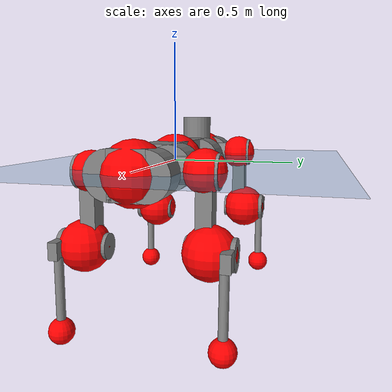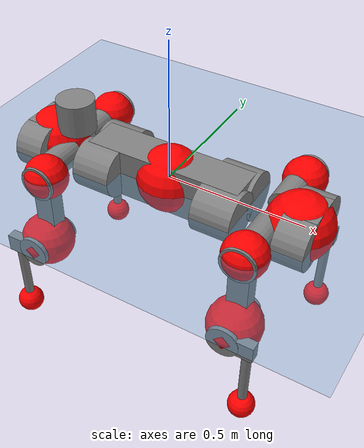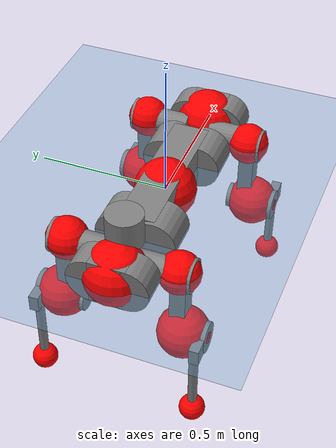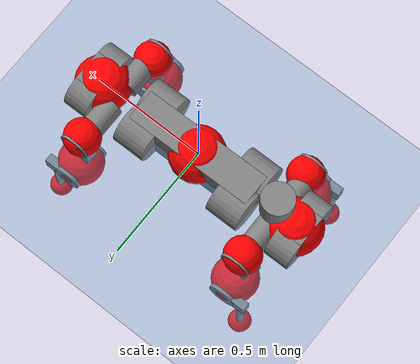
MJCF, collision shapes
<mujoco model="anymal_c">
  <compiler angle="radian" assetdir="assets" balanceinertia="true" inertiafromgeom="false"/>

  <option timestep="0.005" density="1.2" viscosity="2e-05"/>

  <size nkey="1"/>

  <visual>
    <quality shadowsize="8192"/>
    <map shadowclip="0.5"/>
  </visual>

  <default>
    <default class="/">
      <material specular="0" shininess="0.25"/>
      <geom contype="0" conaffinity="0" group="1" solref="-1000 -80"/>
      <site size="0.01 0.005 0.005" group="5"/>
      <general forcelimited="true" forcerange="-80 80" biastype="affine" gainprm="80" biasprm="0 -80 -2"/>
      <default class="anymal_c">
        <joint armature="0.01" damping="0.01" frictionloss="0.1"/>
        <default class="visual">
          <geom type="mesh" group="2"/>
          <default class="visual_zflip"/>
        </default>
        <default class="collision">
          <geom type="cylinder" group="3"/>
          <default class="foot">
            <geom size="0.03 0 0" type="sphere" condim="6" priority="1" friction="0.8 0.02 0.01" solimp="0.015 1 0.03"/>
          </default>
        </default>
      </default>
      <default class="reward_collision_sphere">
        <geom group="5" rgba="1 0 0 1"/>
      </default>
    </default>
  </default>

  <asset>
    <texture type="skybox" colorspace="auto" name="//unnamed_texture_0" builtin="gradient" rgb1="0.95 0.95 0.95" rgb2="0.95 0.95 0.95" width="100" height="600"/>
    <texture type="2d" colorspace="auto" name="texplane" builtin="checker" rgb1="0.345 0.575 0.748" rgb2="0.345 0.575 0.748" markrgb="1 1 1" width="512" height="512"/>
    <texture type="2d" colorspace="linear" name="base" file="base.png"/>
    <texture type="2d" colorspace="linear" name="top_shell" file="top_shell.png"/>
    <texture type="2d" colorspace="linear" name="bottom_shell" file="bottom_shell.png"/>
    <texture type="2d" colorspace="linear" name="remote" file="remote.png"/>
    <texture type="2d" colorspace="linear" name="hatch" file="hatch.png"/>
    <texture type="2d" colorspace="linear" name="handle" file="handle.png"/>
    <texture type="2d" colorspace="linear" name="face" file="face.png"/>
    <texture type="2d" colorspace="linear" name="battery" file="battery.png"/>
    <texture type="2d" colorspace="linear" name="lidar_cage" file="lidar_cage.png"/>
    <texture type="2d" colorspace="linear" name="depth_camera" file="depth_camera.png"/>
    <texture type="2d" colorspace="linear" name="wide_angle_camera" file="wide_angle_camera.png"/>
    <texture type="2d" colorspace="linear" name="lidar" file="lidar.png"/>
    <texture type="2d" colorspace="linear" name="drive" file="drive.png"/>
    <texture type="2d" colorspace="linear" name="hip_l" file="hip_l.png"/>
    <texture type="2d" colorspace="linear" name="shank_l" file="shank_l.png"/>
    <texture type="2d" colorspace="linear" name="foot" file="foot.png"/>
    <texture type="2d" colorspace="linear" name="thigh" file="thigh.png"/>
    <texture type="2d" colorspace="linear" name="shank_r" file="shank_r.png"/>
    <texture type="2d" colorspace="linear" name="hip_r" file="hip_r.png"/>
    <material name="MatPlane" class="/" texture="texplane" texuniform="true" texrepeat="2 2" specular="0.9" shininess="0.5"/>
    <material name="black_plastic" class="/" rgba="0.007 0.007 0.007 1"/>
    <material name="green" class="/" rgba="0.052 0.178 0.033 1"/>
    <material name="red" class="/" rgba="0.178 0.006 0.005 1"/>
    <material name="yellow" class="/" rgba="0.178 0.119 0.006 1"/>
    <material name="lwl" class="/" rgba="0.8 0.8 0.8 1"/>
    <material name="base" class="/" texture="base"/>
    <material name="top_shell" class="/" texture="top_shell"/>
    <material name="bottom_shell" class="/" texture="bottom_shell"/>
    <material name="hip_l" class="/" texture="hip_l"/>
    <material name="thigh" class="/" texture="thigh"/>
    <material name="shank_l" class="/" texture="shank_l"/>
    <material name="foot" class="/" texture="foot"/>
    <material name="hip_r" class="/" texture="hip_r"/>
    <material name="shank" class="/" texture="shank_r"/>
    <material name="hatch" class="/" texture="hatch"/>
    <material name="remote" class="/" texture="remote"/>
    <material name="handle" class="/" texture="handle"/>
    <material name="face" class="/" texture="face"/>
    <material name="depth_camera" class="/" texture="depth_camera"/>
    <material name="wide_angle_camera" class="/" texture="wide_angle_camera"/>
    <material name="battery" class="/" texture="battery"/>
    <material name="lidar_cage" class="/" texture="lidar_cage"/>
    <material name="lidar" class="/" texture="lidar"/>
    <material name="drive" class="/" texture="drive"/>
    <mesh name="base_0" class="/" file="base_0.obj"/>
    <mesh name="base_1" class="/" file="base_1.obj"/>
    <mesh name="base_2" class="/" file="base_2.obj"/>
    <mesh name="base_3" class="/" file="base_3.obj"/>
    <mesh name="base_4" class="/" file="base_4.obj"/>
    <mesh name="base_5" class="/" file="base_5.obj"/>
    <mesh name="top_shell" class="/" file="top_shell.obj"/>
    <mesh name="bottom_shell" class="/" file="bottom_shell.obj"/>
    <mesh name="remote" class="/" file="remote.obj"/>
    <mesh name="handle" class="/" file="handle.obj"/>
    <mesh name="face" class="/" file="face.obj"/>
    <mesh name="wide_angle_camera" class="/" file="wide_angle_camera.obj"/>
    <mesh name="depth_camera" class="/" file="depth_camera.obj"/>
    <mesh name="battery" class="/" file="battery.obj"/>
    <mesh name="lidar_cage" class="/" file="lidar_cage.obj"/>
    <mesh name="lidar" class="/" file="lidar.obj"/>
    <mesh name="drive" class="/" file="drive.obj"/>
    <mesh name="hip_l" class="/" file="hip_l.obj"/>
    <mesh name="thigh" class="/" file="thigh.obj"/>
    <mesh name="shank_l" class="/" file="shank_l.obj"/>
    <mesh name="foot" class="/" file="foot.obj"/>
    <mesh name="hip_r" class="/" file="hip_r.obj"/>
    <mesh name="hatch" class="/" file="hatch.obj"/>
    <mesh name="shank_r" class="/" file="shank_r.obj"/>
  </asset>

  <worldbody>
    <geom name="floor" class="/" size="100 100 0.125" type="plane" group="0" material="MatPlane"/>
    <light name="toplight_shadow" class="/" pos="0 0 5" dir="0.0990148 0.0990148 -0.990148" type="directional" ambient="0.04 0.04 0.04" diffuse="0.55 0.55 0.55" specular="0.12 0.12 0.12"/>
    <light name="toplight_fill" class="/" pos="0 0 5" dir="0.0990148 0.0990148 -0.990148" type="directional" castshadow="false" ambient="0.04 0.04 0.04" diffuse="0.3 0.3 0.3" specular="0.08 0.08 0.08"/>
    <body name="trunk" childclass="anymal_c" pos="0.00340822 0.00119652 -0.00470032" quat="0.999996 -0.0011391 0.00123647 0.00246093">
      <inertial pos="0.0171751 0.0114093 0.0548292" quat="0.499562 0.490713 0.498754 0.510768" mass="15.2328" diaginertia="0.852981 0.401164 0.186921"/>
      <joint name="//unnamed_joint_0" type="free" armature="0" damping="0" frictionloss="0"/>
      <geom name="//unnamed_geom_1" class="visual" material="green" mesh="base_0"/>
      <geom name="//unnamed_geom_2" class="visual" material="yellow" mesh="base_1"/>
      <geom name="//unnamed_geom_3" class="visual" material="red" mesh="base_2"/>
      <geom name="//unnamed_geom_4" class="visual" material="black_plastic" mesh="base_3"/>
      <geom name="//unnamed_geom_5" class="visual" material="lwl" mesh="base_4"/>
      <geom name="//unnamed_geom_6" class="visual" material="base" mesh="base_5"/>
      <geom name="trunk_1" class="collision" size="0.285464 0.0689051 0.0885922" type="box"/>
      <geom name="trunk_2" class="collision" size="0.0885922 0.0713659" pos="0.229966 0.0643017 0" quat="0.707107 0 0.707107 0"/>
      <geom name="trunk_3" class="collision" size="0.0885922 0.0713659" pos="-0.229966 0.0643017 0" quat="0.707107 0 0.707107 0"/>
      <geom name="trunk_4" class="collision" size="0.0885922 0.0713659" pos="0.229966 -0.0643017 0" quat="0.707107 0 0.707107 0"/>
      <geom name="trunk_5" class="collision" size="0.0885922 0.0713659" pos="-0.229966 -0.0643017 0" quat="0.707107 0 0.707107 0"/>
      <geom name="//unnamed_geom_12" class="visual" material="top_shell" mesh="top_shell"/>
      <geom name="//unnamed_geom_13" class="visual" material="bottom_shell" mesh="bottom_shell"/>
      <geom name="//unnamed_geom_14" class="visual" material="remote" mesh="remote"/>
      <geom name="//unnamed_geom_15" class="visual" material="handle" mesh="handle"/>
      <geom name="//unnamed_geom_16" class="visual" pos="0.438257 0 0" quat="1 0 0 0" material="face" mesh="face"/>
      <geom name="trunk_6" class="collision" size="0.0541397 0.0689051 0.0885922" pos="0.49641 0 0" type="box"/>
      <geom name="//unnamed_geom_18" class="collision" size="0.0885922 0.0541397" pos="0.49641 0.0643017 0" quat="0.707107 0 0.707107 0"/>
      <geom name="//unnamed_geom_19" class="collision" size="0.0885922 0.0541397" pos="0.49641 -0.0643017 0" quat="0.707107 0 0.707107 0"/>
      <geom name="//unnamed_geom_20" class="visual" pos="0.488106 0 -0.027924" quat="0.965926 0 0.258819 0" material="depth_camera" mesh="depth_camera"/>
      <geom name="//unnamed_geom_21" class="visual" pos="0.542403 0 0.0146281" material="wide_angle_camera" mesh="wide_angle_camera"/>
      <geom name="//unnamed_geom_22" class="visual_zflip" pos="-0.438257 0 0" quat="0 0 0 1" material="face" mesh="face"/>
      <geom name="trunk_7" class="collision" size="0.0541397 0.0689051 0.0885922" pos="-0.49641 0 0" quat="0 0 0 1" type="box"/>
      <geom name="//unnamed_geom_24" class="collision" size="0.0885922 0.0541397" pos="-0.49641 -0.0643017 0" quat="0 -0.707107 0 0.707107"/>
      <geom name="//unnamed_geom_25" class="collision" size="0.0885922 0.0541397" pos="-0.49641 0.0643017 0" quat="0 -0.707107 0 0.707107"/>
      <geom name="//unnamed_geom_26" class="visual" pos="-0.488106 0 -0.027924" quat="0 -0.258819 0 0.965926" material="depth_camera" mesh="depth_camera"/>
      <geom name="//unnamed_geom_27" class="visual_zflip" pos="-0.542403 0 0.0146281" quat="0 0 0 1" material="wide_angle_camera" mesh="wide_angle_camera"/>
      <geom name="//unnamed_geom_28" class="visual" material="battery" mesh="battery"/>
      <geom name="//unnamed_geom_29" class="visual" pos="0 0.0684122 0.0289957" quat="0.683013 -0.183013 0.183013 0.683013" material="depth_camera" mesh="depth_camera"/>
      <geom name="//unnamed_geom_30" class="visual" pos="0 -0.0684122 0.0289957" quat="0.683013 0.183013 0.183013 -0.683013" material="depth_camera" mesh="depth_camera"/>
      <geom name="//unnamed_geom_31" class="visual" pos="-0.384863 0 0.0718214" quat="1 0 0 0" material="lidar_cage" mesh="lidar_cage"/>
      <geom name="trunk_8" class="collision" size="0.0689051 0.0590615" pos="-0.384863 0 0.130451"/>
      <geom name="//unnamed_geom_33" class="visual" pos="-0.384863 -5.44991e-05 0.138953" quat="0.707107 0 0 -0.707107" material="lidar" mesh="lidar"/>
      <geom name="//unnamed_geom_34" class="visual" pos="0.317089 0.0955548 -1.01028e-09" quat="0.258819 0.965926 0 0" material="drive" mesh="drive"/>
      <geom name="//unnamed_geom_35" class="visual" pos="0.317089 -0.0955548 1.01028e-09" quat="0.258819 -0.965926 0 0" material="drive" mesh="drive"/>
      <geom name="//unnamed_geom_36" class="visual" pos="-0.317089 0.0955548 1.01028e-09" quat="0 0 0.965926 -0.258819" material="drive" mesh="drive"/>
      <geom name="//unnamed_geom_37" class="visual" pos="-0.317089 -0.0955548 -1.01028e-09" quat="0 0 -0.965926 -0.258819" material="drive" mesh="drive"/>
      <geom name="//unnamed_geom_38" class="visual" pos="0.122649 0 0.0713329" quat="1 0 0 0" material="hatch" mesh="hatch"/>
      <geom name="//unnamed_geom_39" class="reward_collision_sphere" size="0.118123"/>
      <geom name="//unnamed_geom_40" class="reward_collision_sphere" size="0.118123" pos="0.475792 0 0"/>
      <geom name="//unnamed_geom_41" class="reward_collision_sphere" size="0.118123" pos="-0.475792 0 0"/>
      <site name="imu" pos="0.200164 0.00659736 0.107839" size="0.00984358"/>
      <camera name="track" pos="0 -1.83719 0" quat="0.707107 0.707107 0 0" mode="trackcom"/>
      <camera name="ego_camera" pos="0.475792 0 -0.0390865" quat="-0.5 -0.5 0.5 0.5"/>
      <body name="LF_HIP" pos="0.327016 0.105961 0.00641947" quat="0.258919 0.965899 4.30919e-05 0.000659586">
        <inertial pos="0.0595592 -0.00424951 -0.00760603" quat="-0.131328 0.71125 -0.135145 0.677209" mass="2.86919" diaginertia="0.00926303 0.00430129 0.00351086"/>
        <joint name="LF_HAA" pos="0 0 0" axis="0.999995 -0.00135587 -0.00270951" stiffness="0.0426768" range="-0.726288 0.377429" armature="0.0100881" damping="0" frictionloss="0.14082"/>
        <geom name="//unnamed_geom_42" class="visual" pos="0 -5.94303e-05 9.76138e-06" quat="0.258819 -0.965926 0 0" material="hip_l" mesh="hip_l"/>
        <geom name="//unnamed_geom_43" class="visual" pos="0.0633332 -0.074936 -0.0436975" quat="0.183013 -0.683013 0.683013 0.183013" material="drive" mesh="drive"/>
        <geom name="//unnamed_geom_44" class="collision" size="0.0492179 0.0689051" pos="0.0633332 -0.0109862 -0.00674731" quat="-0.353553 -0.612372 0.612372 -0.353553"/>
        <body name="LF_THIGH" pos="0.0706656 -0.0800181 -0.0472331" quat="0.180228 -0.685332 0.682684 0.178271">
          <inertial pos="0.0331285 0.000221246 -0.247201" quat="0.989732 0.0101696 -0.0623209 0.128231" mass="3.28279" diaginertia="0.0398144 0.0230972 0.00356365"/>
          <joint name="LF_HFE" pos="0 0 0" axis="0.999872 0.00860742 -0.0135066" stiffness="0.0119919" range="-3.37072 2.96999" armature="0.011493" damping="0" frictionloss="0.134795"/>
          <geom name="//unnamed_geom_45" class="visual" pos="0.00275997 4.34907e-06 0" quat="0.707107 0 0 -0.707107" material="thigh" mesh="thigh"/>
          <geom name="//unnamed_geom_46" class="collision" size="0.0639833 0.0393743" pos="0.0422926 0 0" quat="0.5 0.5 -0.5 -0.5"/>
          <geom name="//unnamed_geom_47" class="collision" size="0.0369134 0.0295307 0.139104" pos="0.0317195 0 -0.138087" quat="0.707107 0 0 -0.707107" type="box"/>
          <geom name="//unnamed_geom_48" class="visual" pos="0.106049 0 -0.278491" quat="1 0 0 0" material="drive" mesh="drive"/>
          <geom name="//unnamed_geom_49" class="collision" size="0.0492179 0.0689051" pos="0.0320367 0 -0.278491" quat="0.707107 0 0.707107 0"/>
          <geom name="//unnamed_geom_50" class="reward_collision_sphere" size="0.0787486" pos="0.0264329 0 0"/>
          <body name="LF_SHANK" pos="0.105024 -0.0118934 -0.279641" quat="0.999999 -0.00146981 -0.000262247 -0.000124704">
            <inertial pos="0.0046833 -0.0588495 -0.0724951" quat="0.99294 -0.11669 -0.00231861 -0.0211492" mass="0.585099" diaginertia="0.0156523 0.00614418 0.000989723"/>
            <joint name="LF_KFE" pos="0 0 0" axis="0.999995 -0.00289962 -0.000963467" stiffness="0.0558828" range="-3.3087 3.15977" armature="0.00782986" damping="0.00752252" frictionloss="0.103492"/>
            <geom name="//unnamed_geom_51" class="visual" pos="0.000899966 0.00479867 0" quat="0.707107 0 0 -0.707107" material="shank_l" mesh="shank_l"/>
            <geom name="LF_kfe_act" class="collision" size="0.0590615 0.0196872" pos="0.0211463 0 0" quat="0.5 0.5 -0.5 -0.5"/>
            <geom name="//unnamed_geom_53" class="collision" size="0.0565996 0.0332221 0.0187028" pos="0.0211463 -0.0528183 0" quat="0.5 0.5 -0.5 -0.5" type="box"/>
            <geom name="//unnamed_geom_54" class="visual" pos="0.0137977 -0.0792441 -0.330252" quat="0.382683 0 0 -0.92388" material="foot" mesh="foot"/>
            <geom name="LF_calf" class="collision" size="0.0172263 0.139043" pos="0.013798 -0.0807905 -0.165126" quat="0.707107 0 0 -0.707107"/>
            <geom name="LF_foot" class="foot" size="0.0314095" pos="0.013798 -0.0807905 -0.308265" quat="0.707107 0 0 -0.707107"/>
            <geom name="//unnamed_geom_57" class="reward_collision_sphere" size="0.0984358" pos="-0.0528658 0 0"/>
            <geom name="//unnamed_geom_58" class="reward_collision_sphere" size="0.0492179" pos="0.013798 -0.0807905 -0.308265"/>
            <site name="LF_foot" class="foot" pos="0.013798 -0.0807905 -0.308265" quat="0.707107 0 0 -0.707107" size="0.00984358"/>
          </body>
        </body>
      </body>
      <body name="RF_HIP" pos="0.330013 -0.097205 0.00272693" quat="0.259049 -0.965864 -0.000722847 -6.99223e-05">
        <inertial pos="0.0681697 0.0288317 0.000344579" quat="0.195203 0.659204 0.102772 0.718876" mass="2.59946" diaginertia="0.00852487 0.00265239 0.00320717"/>
        <joint name="RF_HAA" pos="0 0 0" axis="0.998658 0.0495343 -0.0151323" range="-0.528801 0.695964" armature="0.00972967" damping="0.0516559" frictionloss="0.0739061"/>
        <geom name="//unnamed_geom_59" class="visual" pos="0 5.94298e-05 9.76135e-06" quat="0.258819 0.965926 0 0" material="hip_r" mesh="hip_r"/>
        <geom name="//unnamed_geom_60" class="visual" pos="0.0633332 0.074936 -0.0436975" quat="0.183013 0.683013 0.683013 -0.183013" material="drive" mesh="drive"/>
        <geom name="//unnamed_geom_61" class="collision" size="0.0492179 0.0689051" pos="0.0633332 0.0109862 -0.00674731" quat="-0.353553 0.612372 0.612372 0.353553"/>
        <body name="RF_THIGH" pos="0.0563488 0.0735749 -0.0300354" quat="0.182588 0.686436 0.680615 -0.179528">
          <inertial pos="0.0199162 0.00410529 -0.232698" quat="0.995184 0.0238959 -0.0651092 0.0692668" mass="2.63207" diaginertia="0.0453375 0.0228468 0.00323038"/>
          <joint name="RF_HFE" pos="0 0 0" axis="0.999997 -0.00119668 0.00228279" stiffness="0.016877" range="-3.23391 3.18899" armature="0.0135517" damping="0.00648947" frictionloss="0.0708194"/>
          <geom name="//unnamed_geom_62" class="visual" pos="0.00275997 4.34907e-06 0" quat="0.707107 0 0 -0.707107" material="thigh" mesh="thigh"/>
          <geom name="//unnamed_geom_63" class="collision" size="0.0639833 0.0393743" pos="0.0422926 0 0" quat="0.5 0.5 0.5 0.5"/>
          <geom name="//unnamed_geom_64" class="collision" size="0.0369134 0.0295307 0.139104" pos="0.0317195 0 -0.138087" quat="0.707107 0 0 0.707107" type="box"/>
          <geom name="//unnamed_geom_65" class="visual" pos="0.106049 0 -0.278491" quat="1 0 0 0" material="drive" mesh="drive"/>
          <geom name="//unnamed_geom_66" class="collision" size="0.0492179 0.0689051" pos="0.0320367 0 -0.278491" quat="0.707107 0 0.707107 0"/>
          <geom name="//unnamed_geom_67" class="reward_collision_sphere" size="0.0787486" pos="0.0264329 0 0"/>
          <body name="RF_SHANK" pos="0.11369 0.00148824 -0.279822" quat="0.999993 -0.00265718 0.00104617 -0.00236639">
            <inertial pos="0.0157081 0.0559696 -0.0783956" quat="0.989721 0.135719 0.035424 -0.0278963" mass="0.443622" diaginertia="0.0109206 0.00567858 0.000884853"/>
            <joint name="RF_KFE" pos="0 0 0" axis="0.999898 0.0124329 -0.00699573" stiffness="0.062188" range="-2.88242 3.29534" armature="0.0042492" damping="0" frictionloss="0.0688544"/>
            <geom name="//unnamed_geom_68" class="visual" pos="0.000899961 -0.00479866 0" quat="0.707107 0 0 0.707107" material="shank" mesh="shank_r"/>
            <geom name="RF_kfe_act" class="collision" size="0.0590615 0.0196872" pos="0.0211463 0 0" quat="0.5 0.5 0.5 0.5"/>
            <geom name="//unnamed_geom_70" class="collision" size="0.0565996 0.0332221 0.0187028" pos="0.0211463 0.0528183 0" quat="0.5 0.5 0.5 0.5" type="box"/>
            <geom name="//unnamed_geom_71" class="visual" pos="0.0137982 0.0792441 -0.330252" quat="0.382683 0 0 0.92388" material="foot" mesh="foot"/>
            <geom name="RF_calf" class="collision" size="0.0172263 0.139043" pos="0.013798 0.0807905 -0.165126" quat="0.707107 0 0 0.707107"/>
            <geom name="RF_foot" class="foot" size="0.0404328" pos="0.013798 0.0807905 -0.308265" quat="0.707107 0 0 0.707107"/>
            <geom name="//unnamed_geom_74" class="reward_collision_sphere" size="0.0984358" pos="-0.0528658 0 0"/>
            <geom name="//unnamed_geom_75" class="reward_collision_sphere" size="0.0492179" pos="0.013798 0.0807905 -0.308265"/>
            <site name="RF_foot" class="foot" pos="0.013798 0.0807905 -0.308265" quat="0.707107 0 0 0.707107" size="0.00984358"/>
          </body>
        </body>
      </body>
      <body name="LH_HIP" pos="-0.328775 0.104544 0.0111978" quat="8.94208e-05 7.91831e-05 0.965946 -0.258745">
        <inertial pos="0.0595095 0.0051949 0.0052018" quat="0.11628 0.674817 0.175697 0.707271" mass="2.20652" diaginertia="0.0052859 0.00279208 0.00267307"/>
        <joint name="LH_HAA" pos="0 0 0" axis="0.998663 0.00455958 0.0514997" stiffness="0.0281492" range="-0.515647 0.625292" armature="0.00971886" damping="0.0672651" frictionloss="0.0957532"/>
        <geom name="//unnamed_geom_76" class="visual" pos="0 5.94298e-05 9.76135e-06" quat="-0.258819 -0.965926 0 0" material="hip_r" mesh="hip_r"/>
        <geom name="//unnamed_geom_77" class="visual" pos="0.0633332 0.074936 -0.0436975" quat="0.183013 0.683013 0.683013 -0.183013" material="drive" mesh="drive"/>
        <geom name="//unnamed_geom_78" class="collision" size="0.0492179 0.0689051" pos="0.0633332 0.0109862 -0.00674731" quat="-0.353553 0.612372 0.612372 0.353553"/>
        <body name="LH_THIGH" pos="0.0614392 0.0723828 -0.0469295" quat="0.182122 0.684738 0.68144 -0.183317">
          <inertial pos="0.047092 -0.0045293 -0.226757" quat="0.993268 -0.00489968 -0.0750261 0.0881212" mass="3.48297" diaginertia="0.0522715 0.0193109 0.0038905"/>
          <joint name="LH_HFE" pos="0 0 0" axis="0.999998 -0.00116477 -0.00134848" range="-3.00593 3.30997" armature="0.00853529" damping="0.0557565" frictionloss="0.0934226"/>
          <geom name="//unnamed_geom_79" class="visual" pos="0.00275997 4.34907e-06 0" quat="0.707107 0 0 -0.707107" material="thigh" mesh="thigh"/>
          <geom name="//unnamed_geom_80" class="collision" size="0.0639833 0.0393743" pos="0.0422926 0 0" quat="0.5 0.5 -0.5 -0.5"/>
          <geom name="//unnamed_geom_81" class="collision" size="0.0369134 0.0295307 0.139104" pos="0.0317195 0 -0.138087" quat="0.707107 0 0 -0.707107" type="box"/>
          <geom name="//unnamed_geom_82" class="visual" pos="0.106049 0 -0.278491" quat="1 0 0 0" material="drive" mesh="drive"/>
          <geom name="//unnamed_geom_83" class="collision" size="0.0492179 0.0689051" pos="0.0320367 0 -0.278491" quat="0.707107 0 0.707107 0"/>
          <geom name="//unnamed_geom_84" class="reward_collision_sphere" size="0.0787486" pos="0.0264329 0 0"/>
          <body name="LH_SHANK" pos="0.11144 -0.00509497 -0.274249" quat="1 -0.000570715 -0.000310384 -0.000141825">
            <inertial pos="-0.000957491 0.0446185 -0.0744319" quat="0.9918 0.124231 0.0299733 0.000728931" mass="0.453222" diaginertia="0.0121597 0.00423309 0.000772292"/>
            <joint name="LH_KFE" pos="0 0 0" axis="0.999998 -0.00128467 -0.00122277" range="-3.3655 3.3181" armature="0.00370487" damping="0" frictionloss="0.151355"/>
            <geom name="//unnamed_geom_85" class="visual" pos="0.000899961 -0.00479866 0" quat="-0.707107 0 0 -0.707107" material="shank" mesh="shank_r"/>
            <geom name="LH_kfe_act" class="collision" size="0.0590615 0.0196872" pos="0.0211463 0 0" quat="0.5 0.5 -0.5 -0.5"/>
            <geom name="//unnamed_geom_87" class="collision" size="0.0565996 0.0332221 0.0187028" pos="0.0211463 0.0528183 0" quat="0.5 0.5 -0.5 -0.5" type="box"/>
            <geom name="//unnamed_geom_88" class="visual" pos="0.0137982 0.0792441 -0.330252" quat="-0.382683 0 0 -0.92388" material="foot" mesh="foot"/>
            <geom name="LH_calf" class="collision" size="0.0172263 0.139043" pos="0.013798 0.0807905 -0.165126" quat="0.707107 0 0 -0.707107"/>
            <geom name="LH_foot" class="foot" size="0.0237713" pos="0.013798 0.0807905 -0.308265" quat="0.707107 0 0 -0.707107"/>
            <geom name="//unnamed_geom_91" class="reward_collision_sphere" size="0.0984358" pos="-0.0528658 0 0"/>
            <geom name="//unnamed_geom_92" class="reward_collision_sphere" size="0.0492179" pos="0.013798 0.0807905 -0.308265"/>
            <site name="LH_foot" class="foot" pos="0.013798 0.0807905 -0.308265" quat="0.707107 0 0 -0.707107" size="0.00984358"/>
          </body>
        </body>
      </body>
      <body name="RH_HIP" pos="-0.331641 -0.0955065 -0.00553654" quat="5.66116e-05 8.02877e-05 -0.96593 -0.258804">
        <inertial pos="0.0676201 -0.0211209 0.00507483" quat="-0.173399 0.668691 -0.170328 0.702691" mass="2.70252" diaginertia="0.00924083 0.00383658 0.00340916"/>
        <joint name="RH_HAA" pos="0 0 0" axis="0.998098 0.0458008 0.0412578" range="-0.48309 0.350766" armature="0.0126798" damping="0.0437707" frictionloss="0.0955131"/>
        <geom name="//unnamed_geom_93" class="visual" pos="0 -5.94303e-05 9.76138e-06" quat="-0.258819 0.965926 0 0" material="hip_l" mesh="hip_l"/>
        <geom name="//unnamed_geom_94" class="visual" pos="0.0633332 -0.074936 -0.0436975" quat="-0.183013 0.683013 -0.683013 -0.183013" material="drive" mesh="drive"/>
        <geom name="//unnamed_geom_95" class="collision" size="0.0492179 0.0689051" pos="0.0633332 -0.0109862 -0.00674731" quat="0.353553 0.612372 -0.612372 0.353553"/>
        <body name="RH_THIGH" pos="0.0499164 -0.0713995 -0.0291721" quat="-0.178382 0.681916 -0.684798 -0.184993">
          <inertial pos="0.0331954 -0.00757985 -0.243177" quat="0.993426 -0.00885215 -0.0762302 0.0849401" mass="3.61788" diaginertia="0.0494248 0.021676 0.00417619"/>
          <joint name="RH_HFE" pos="0 0 0" axis="0.999946 0.00474419 -0.00923063" stiffness="0.00371573" range="-3.29439 3.22314" armature="0.0108894" damping="0" frictionloss="0.0921532"/>
          <geom name="//unnamed_geom_96" class="visual" pos="0.00275997 4.34907e-06 0" quat="0.707107 0 0 -0.707107" material="thigh" mesh="thigh"/>
          <geom name="//unnamed_geom_97" class="collision" size="0.0639833 0.0393743" pos="0.0422926 0 0" quat="0.5 0.5 0.5 0.5"/>
          <geom name="//unnamed_geom_98" class="collision" size="0.0369134 0.0295307 0.139104" pos="0.0317195 0 -0.138087" quat="0.707107 0 0 0.707107" type="box"/>
          <geom name="//unnamed_geom_99" class="visual" pos="0.106049 0 -0.278491" quat="1 0 0 0" material="drive" mesh="drive"/>
          <geom name="//unnamed_geom_100" class="collision" size="0.0492179 0.0689051" pos="0.0320367 0 -0.278491" quat="0.707107 0 0.707107 0"/>
          <geom name="//unnamed_geom_101" class="reward_collision_sphere" size="0.0787486" pos="0.0264329 0 0"/>
          <body name="RH_SHANK" pos="0.102984 -0.010387 -0.273862" quat="0.99998 0.00402465 -0.00134393 0.00464802">
            <inertial pos="-0.00475407 -0.0503233 -0.0825079" quat="0.991855 -0.105122 0.0194079 -0.0692605" mass="0.534916" diaginertia="0.0143755 0.00599013 0.00109372"/>
            <joint name="RH_KFE" pos="0 0 0" axis="0.99999 0.00173706 -0.00413868" range="-3.08646 2.89841" armature="0.0105499" damping="0" frictionloss="0.0692509"/>
            <geom name="//unnamed_geom_102" class="visual" pos="0.000899966 0.00479867 0" quat="0.707107 0 0 -0.707107" material="shank_l" mesh="shank_l"/>
            <geom name="RH_kfe_act" class="collision" size="0.0590615 0.0196872" pos="0.0211463 0 0" quat="0.5 0.5 0.5 0.5"/>
            <geom name="//unnamed_geom_104" class="collision" size="0.0565996 0.0332221 0.0187028" pos="0.0211463 -0.0528183 0" quat="0.5 0.5 0.5 0.5" type="box"/>
            <geom name="//unnamed_geom_105" class="visual" pos="0.0137977 -0.0792441 -0.330252" quat="0.382683 0 0 -0.92388" material="foot" mesh="foot"/>
            <geom name="RH_calf" class="collision" size="0.0172263 0.139043" pos="0.013798 -0.0807905 -0.165126" quat="0.707107 0 0 0.707107"/>
            <geom name="RH_foot" class="foot" size="0.0391879" pos="0.013798 -0.0807905 -0.308265" quat="0.707107 0 0 0.707107"/>
            <geom name="//unnamed_geom_108" class="reward_collision_sphere" size="0.0984358" pos="-0.0528658 0 0"/>
            <geom name="//unnamed_geom_109" class="reward_collision_sphere" size="0.0492179" pos="0.013798 -0.0807905 -0.308265"/>
            <site name="RH_foot" class="foot" pos="0.013798 -0.0807905 -0.308265" quat="0.707107 0 0 0.707107" size="0.00984358"/>
          </body>
        </body>
      </body>
    </body>
  </worldbody>

  <contact>
    <pair class="/" geom1="floor" geom2="LF_foot" name="//unnamed_contact_0"/>
    <pair class="/" geom1="floor" geom2="RF_foot" name="//unnamed_contact_1"/>
    <pair class="/" geom1="floor" geom2="LH_foot" name="//unnamed_contact_2"/>
    <pair class="/" geom1="floor" geom2="RH_foot" name="//unnamed_contact_3"/>
  </contact>

  <actuator>
    <general name="LF_HAA" class="/" joint="LF_HAA" forcerange="-108.445 108.445" gainprm="93.3573" biasprm="0 -93.3573 -2.32588"/>
    <general name="LF_HFE" class="/" joint="LF_HFE" forcerange="-117.549 117.549" gainprm="93.3573" biasprm="0 -93.3573 -2.32588"/>
    <general name="LF_KFE" class="/" joint="LF_KFE" forcerange="-92.2046 92.2046" gainprm="93.3573" biasprm="0 -93.3573 -2.32588"/>
    <general name="RF_HAA" class="/" joint="RF_HAA" forcerange="-81.601 81.601" gainprm="93.3573" biasprm="0 -93.3573 -2.32588"/>
    <general name="RF_HFE" class="/" joint="RF_HFE" forcerange="-51.9144 51.9144" gainprm="93.3573" biasprm="0 -93.3573 -2.32588"/>
    <general name="RF_KFE" class="/" joint="RF_KFE" forcerange="-86.0317 86.0317" gainprm="93.3573" biasprm="0 -93.3573 -2.32588"/>
    <general name="LH_HAA" class="/" joint="LH_HAA" forcerange="-77.155 77.155" gainprm="93.3573" biasprm="0 -93.3573 -2.32588"/>
    <general name="LH_HFE" class="/" joint="LH_HFE" forcerange="-106.791 106.791" gainprm="93.3573" biasprm="0 -93.3573 -2.32588"/>
    <general name="LH_KFE" class="/" joint="LH_KFE" forcerange="-64.4973 64.4973" gainprm="93.3573" biasprm="0 -93.3573 -2.32588"/>
    <general name="RH_HAA" class="/" joint="RH_HAA" forcerange="-83.1764 83.1764" gainprm="93.3573" biasprm="0 -93.3573 -2.32588"/>
    <general name="RH_HFE" class="/" joint="RH_HFE" forcerange="-45.3907 45.3907" gainprm="93.3573" biasprm="0 -93.3573 -2.32588"/>
    <general name="RH_KFE" class="/" joint="RH_KFE" forcerange="-70.6713 70.6713" gainprm="93.3573" biasprm="0 -93.3573 -2.32588"/>
  </actuator>

  <sensor>
    <gyro site="imu" name="imu_angular_velocity"/>
    <velocimeter site="imu" name="imu_linear_velocity"/>
    <framelinvel objtype="site" objname="LF_foot" name="LF_foot_global_linear_velocity"/>
    <framelinvel objtype="site" objname="RF_foot" name="RF_foot_global_linear_velocity"/>
    <framelinvel objtype="site" objname="LH_foot" name="LH_foot_global_linear_velocity"/>
    <framelinvel objtype="site" objname="RH_foot" name="RH_foot_global_linear_velocity"/>
  </sensor>

  <keyframe>
    <key name="home" qpos="0 0 0.55 1 0 0 0 0 0.4 -0.8 0 -0.4 0.8 0 -0.4 0.8 0 0.4 -0.8"/>
  </keyframe>
</mujoco>
